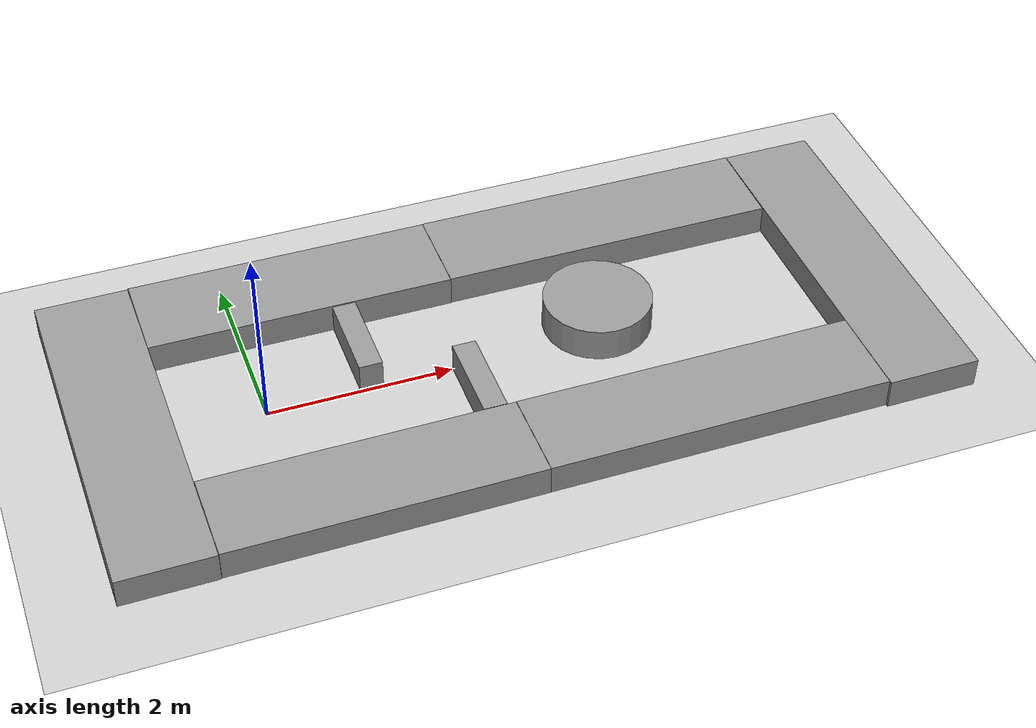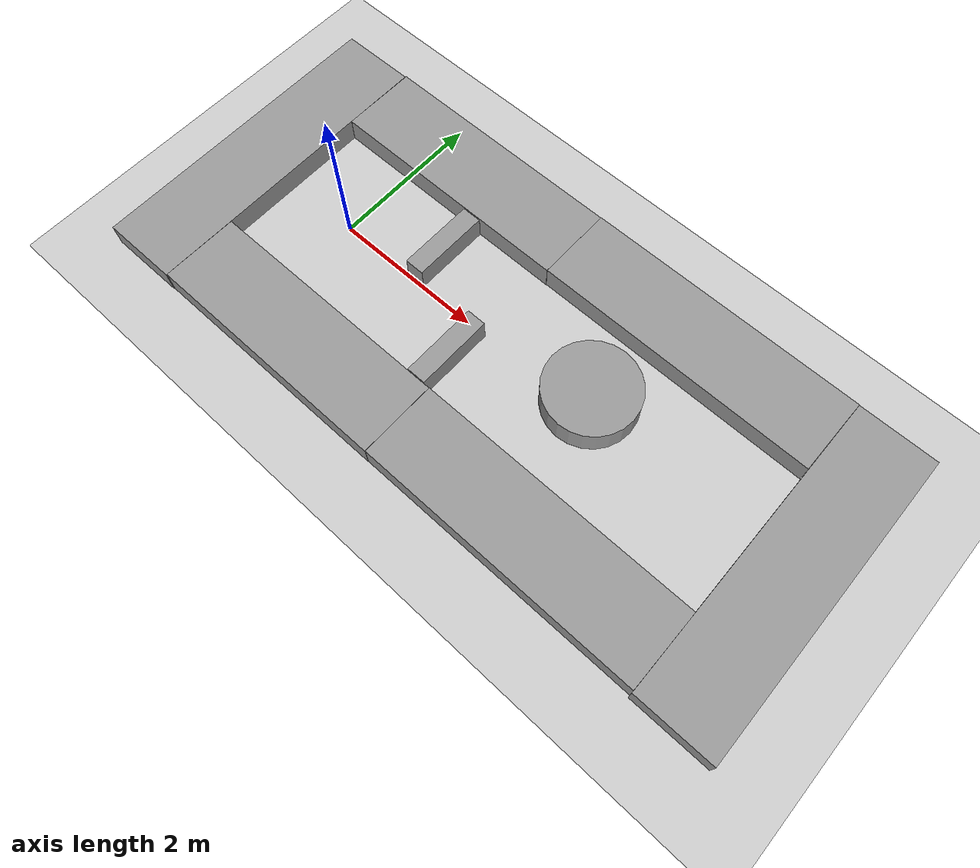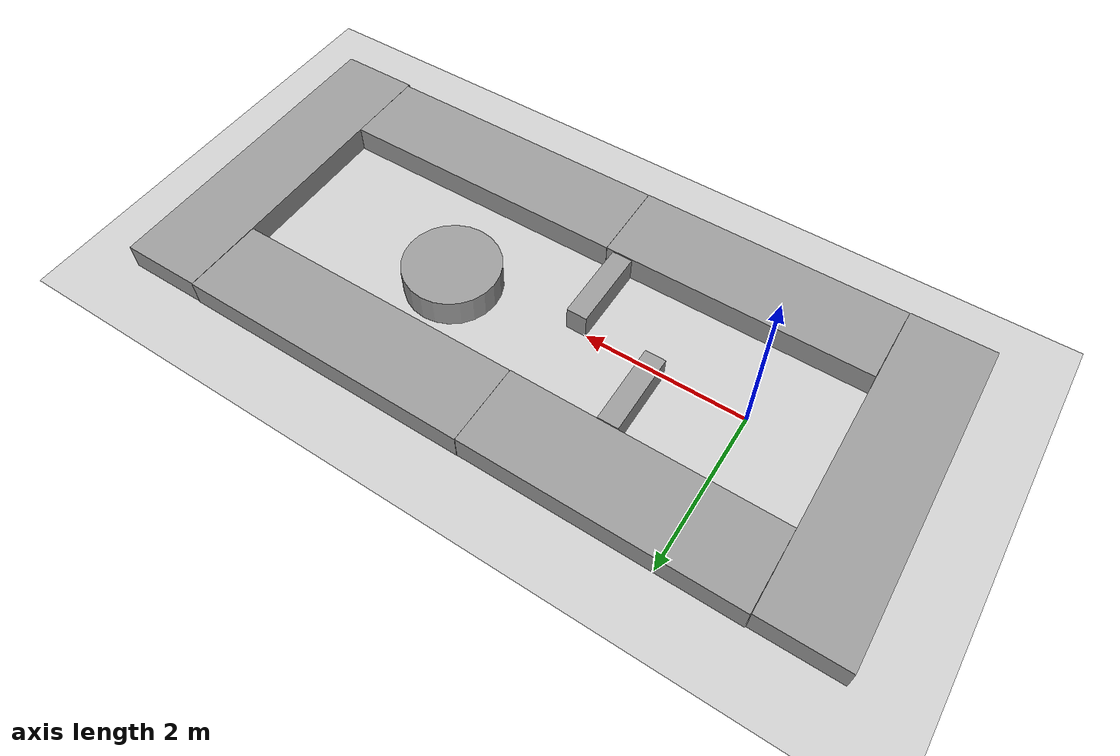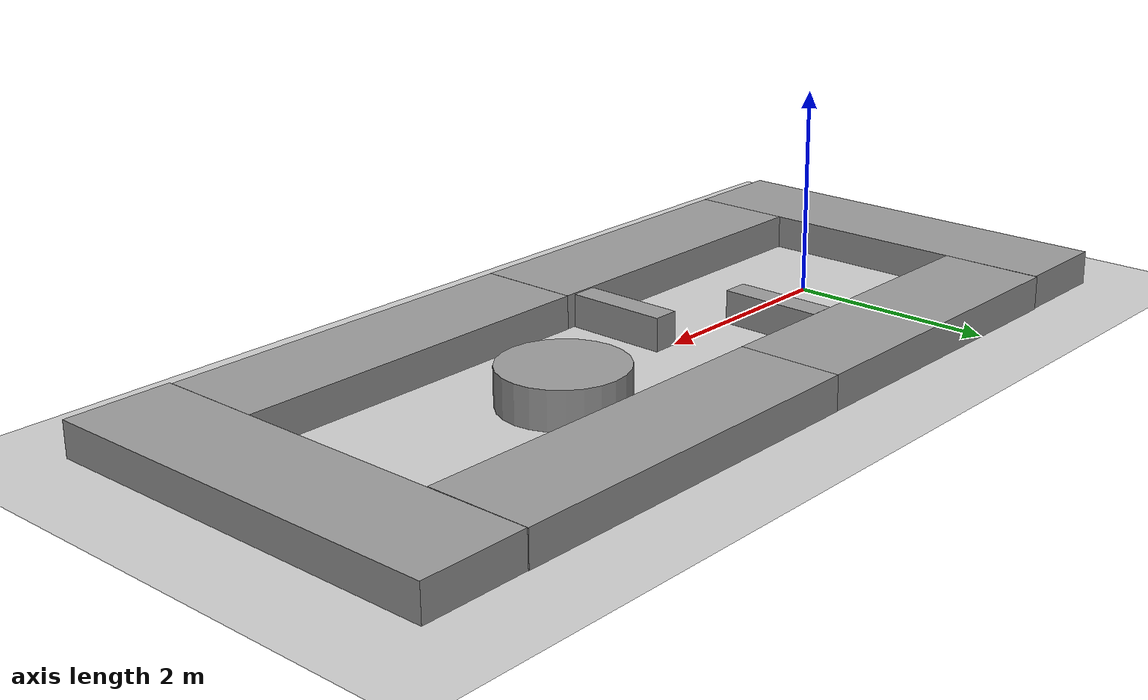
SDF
<sdf version="1.7">
 <world name="default">
  <light name="sun" type="directional">
   <pose>0 0 10 0 -0 0</pose>
   <diffuse>0.8 0.8 0.8 1</diffuse>
   <specular>0.2 0.2 0.2 1</specular>
   <attenuation>
    <range>1000</range>
    <constant>0.9</constant>
    <linear>0.01</linear>
    <quadratic>0.001</quadratic>
   </attenuation>
   <direction>-0.5 0.1 -0.9</direction>
   <spot><inner_angle>0</inner_angle><outer_angle>0</outer_angle><falloff>0</falloff></spot>
  </light>
  <model name="ground_plane">
   <static>1</static>
   <link name="link">
    <collision name="collision">
     <geometry><plane><normal>0 0 1</normal><size>100 100</size></plane></geometry>
     <surface><friction><ode><mu>100</mu><mu2>50</mu2></ode></friction></surface>
    </collision>
    <visual name="visual">
     <cast_shadows>0</cast_shadows>
     <geometry><plane><normal>0 0 1</normal><size>100 100</size></plane></geometry>
     <material>
      <script><uri>file://media/materials/scripts/gazebo.material</uri><name>Gazebo/Grey</name></script>
     </material>
    </visual>
   </link>
  </model>
  <gravity>0 0 -9.8</gravity>
  <magnetic_field>6e-06 2.3e-05 -4.2e-05</magnetic_field>
  <atmosphere type="adiabatic"/>
  <physics type="ode">
   <max_step_size>0.001</max_step_size>
   <real_time_factor>1</real_time_factor>
   <real_time_update_rate>1000</real_time_update_rate>
  </physics>
  <scene><ambient>0.4 0.4 0.4 1</ambient><background>0.7 0.7 0.7 1</background><shadows>1</shadows></scene>
  <spherical_coordinates>
   <surface_model>EARTH_WGS84</surface_model>
   <latitude_deg>0</latitude_deg>
   <longitude_deg>0</longitude_deg>
   <elevation>0</elevation>
   <heading_deg>0</heading_deg>
  </spherical_coordinates>
  <model name="unit_box">
   <pose>0.676645 1.51995 0.163986 0 0.0003 -0.000952</pose>
   <link name="link">
    <inertial>
     <mass>1</mass>
     <inertia>
      <ixx>0.166667</ixx>
      <ixy>0</ixy>
      <ixz>0</ixz>
      <iyy>0.166667</iyy>
      <iyz>0</iyz>
      <izz>0.166667</izz>
     </inertia>
    </inertial>
    <collision name="collision"><geometry><box><size>3.30588 1 0.328964</size></box></geometry></collision>
    <visual name="visual">
     <geometry><box><size>3.30588 1 0.328964</size></box></geometry>
     <material>
      <script><name>Gazebo/Grey</name><uri>file://media/materials/scripts/gazebo.material</uri></script>
     </material>
    </visual>
   </link>
  </model>
  <model name="unit_box_clone">
   <pose>0.695031 -1.50941 0.164475 1.3e-05 0 0.003232</pose>
   <link name="link">
    <inertial>
     <mass>1</mass>
     <inertia>
      <ixx>0.166667</ixx>
      <ixy>0</ixy>
      <ixz>0</ixz>
      <iyy>0.166667</iyy>
      <iyz>0</iyz>
      <izz>0.166667</izz>
     </inertia>
    </inertial>
    <collision name="collision"><geometry><box><size>3.30588 1 0.328964</size></box></geometry></collision>
    <visual name="visual">
     <geometry><box><size>3.30588 1 0.328964</size></box></geometry>
     <material>
      <script><name>Gazebo/Grey</name><uri>file://media/materials/scripts/gazebo.material</uri></script>
     </material>
    </visual>
   </link>
  </model>
  <model name="unit_box_clone_0">
   <pose>-1.47075 -0.009724 0.163313 0 -0.00058 1.5767</pose>
   <link name="link">
    <inertial>
     <mass>1</mass>
     <inertia>
      <ixx>0.166667</ixx>
      <ixy>0</ixy>
      <ixz>0</ixz>
      <iyy>0.166667</iyy>
      <iyz>0</iyz>
      <izz>0.166667</izz>
     </inertia>
    </inertial>
    <collision name="collision"><geometry><box><size>4.03126 1 0.328964</size></box></geometry></collision>
    <visual name="visual">
     <geometry><box><size>4.03126 1 0.328964</size></box></geometry>
     <material>
      <script><name>Gazebo/Grey</name><uri>file://media/materials/scripts/gazebo.material</uri></script>
     </material>
    </visual>
   </link>
  </model>
  <model name="unit_box_clone_1">
   <pose>4.16917 1.52164 0.164477 -9e-06 -0 -0.000511</pose>
   <link name="link">
    <inertial>
     <mass>1</mass>
     <inertia>
      <ixx>0.166667</ixx>
      <ixy>0</ixy>
      <ixz>0</ixz>
      <iyy>0.166667</iyy>
      <iyz>0</iyz>
      <izz>0.166667</izz>
     </inertia>
    </inertial>
    <collision name="collision"><geometry><box><size>3.67799 1 0.328964</size></box></geometry></collision>
    <visual name="visual">
     <geometry><box><size>3.67799 1 0.328964</size></box></geometry>
     <material>
      <script><name>Gazebo/Grey</name><uri>file://media/materials/scripts/gazebo.material</uri></script>
     </material>
    </visual>
   </link>
  </model>
  <model name="unit_box_clone_1_clone">
   <pose>4.18868 -1.49503 0.164477 -9e-06 -0 0.0034</pose>
   <link name="link">
    <inertial>
     <mass>1</mass>
     <inertia>
      <ixx>0.166667</ixx>
      <ixy>0</ixy>
      <ixz>0</ixz>
      <iyy>0.166667</iyy>
      <iyz>0</iyz>
      <izz>0.166667</izz>
     </inertia>
    </inertial>
    <collision name="collision"><geometry><box><size>3.67799 1 0.328964</size></box></geometry></collision>
    <visual name="visual">
     <geometry><box><size>3.67799 1 0.328964</size></box></geometry>
     <material>
      <script><name>Gazebo/Grey</name><uri>file://media/materials/scripts/gazebo.material</uri></script>
     </material>
    </visual>
   </link>
  </model>
  <model name="unit_box_clone_0_clone">
   <pose>6.52116 0.001618 0.164475 1.4e-05 -0 1.57596</pose>
   <link name="link">
    <inertial>
     <mass>1</mass>
     <inertia>
      <ixx>0.166667</ixx>
      <ixy>0</ixy>
      <ixz>0</ixz>
      <iyy>0.166667</iyy>
      <iyz>0</iyz>
      <izz>0.166667</izz>
     </inertia>
    </inertial>
    <collision name="collision"><geometry><box><size>4.03127 1 0.328964</size></box></geometry></collision>
    <visual name="visual">
     <geometry><box><size>4.03127 1 0.328964</size></box></geometry>
     <material>
      <script><name>Gazebo/Grey</name><uri>file://media/materials/scripts/gazebo.material</uri></script>
     </material>
    </visual>
   </link>
  </model>
  <model name="unit_box_1">
   <pose>1.12839 0.509394 0.161514 0 -0 -0.001489</pose>
   <link name="link">
    <inertial>
     <mass>1</mass>
     <inertia>
      <ixx>0.166667</ixx>
      <ixy>0</ixy>
      <ixz>0</ixz>
      <iyy>0.166667</iyy>
      <iyz>0</iyz>
      <izz>0.166667</izz>
     </inertia>
    </inertial>
    <collision name="collision"><geometry><box><size>0.252399 1 0.323029</size></box></geometry></collision>
    <visual name="visual">
     <geometry><box><size>0.252399 1 0.323029</size></box></geometry>
     <material>
      <script><name>Gazebo/Grey</name><uri>file://media/materials/scripts/gazebo.material</uri></script>
     </material>
    </visual>
   </link>
  </model>
  <model name="unit_box_1_clone">
   <pose>2.13201 -0.493867 0.161514 0 0 -0.001489</pose>
   <link name="link">
    <inertial>
     <mass>1</mass>
     <inertia>
      <ixx>0.166667</ixx>
      <ixy>0</ixy>
      <ixz>0</ixz>
      <iyy>0.166667</iyy>
      <iyz>0</iyz>
      <izz>0.166667</izz>
     </inertia>
    </inertial>
    <collision name="collision"><geometry><box><size>0.2524 1 0.323029</size></box></geometry></collision>
    <visual name="visual">
     <geometry><box><size>0.2524 1 0.323029</size></box></geometry>
     <material>
      <script><name>Gazebo/Grey</name><uri>file://media/materials/scripts/gazebo.material</uri></script>
     </material>
    </visual>
   </link>
  </model>
  <model name="unit_cylinder">
   <pose>3.69812 0.198411 0.184122 -1e-06 -1e-06 0</pose>
   <link name="link">
    <inertial>
     <mass>1</mass>
     <inertia><ixx>0.145833</ixx><ixy>0</ixy><ixz>0</ixz><iyy>0.145833</iyy><iyz>0</iyz><izz>0.125</izz></inertia>
    </inertial>
    <collision name="collision">
     <geometry><cylinder><radius>0.588385</radius><length>0.368256</length></cylinder></geometry>
    </collision>
    <visual name="visual">
     <geometry><cylinder><radius>0.588385</radius><length>0.368256</length></cylinder></geometry>
     <material>
      <script><name>Gazebo/Grey</name><uri>file://media/materials/scripts/gazebo.material</uri></script>
     </material>
    </visual>
   </link>
  </model>
 </world>
</sdf>
